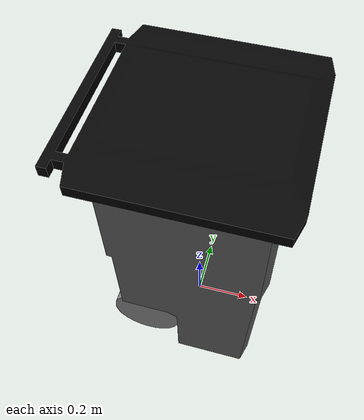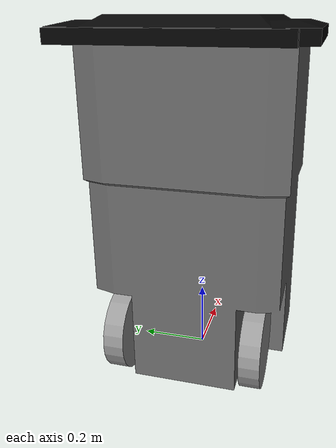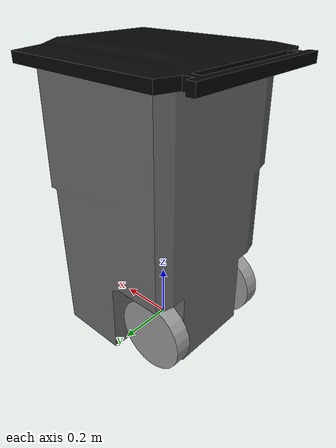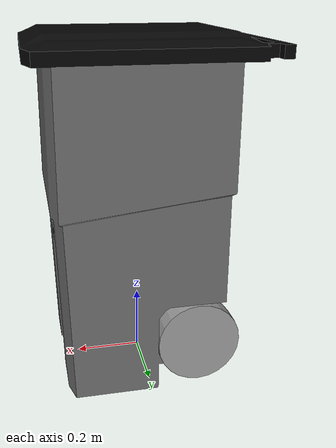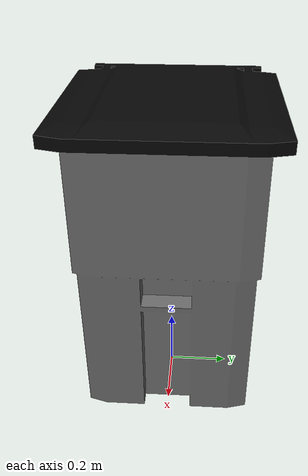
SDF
<?xml version="1.0" ?>
<sdf version="1.5">
  <model name="trash_can_35g">
    <self_collide>false</self_collide>
    <link name="base_link">
      <pose>0 0 0 0 0 0</pose>
      <inertial>
        <pose>0 0 0.4882 0 0 0</pose>
        <mass>55.5</mass>
        <inertia>
          <ixx>5.96</ixx>
          <ixy>0</ixy>
          <ixz>0</ixz>
          <iyy>7.02</iyy>
          <iyz>0</iyz>
          <izz>4.28</izz>
        </inertia>
      </inertial>

      <visual name="base_visual">
        <pose>0.1 0.13 0.13 0 0 0</pose>
        <geometry>
          <mesh>
            <uri>model://trash_can_35g/meshes/trash_can_body.dae</uri>
            <scale>0.28 0.28 0.28</scale>
          </mesh>
        </geometry>
      </visual>

      <collision name="back_base_collision">
        <pose>-0.12 0 0.15 0 0 0</pose>
        <geometry>
          <box>
            <size>0.24 0.3 0.28</size>
          </box>
        </geometry>
      </collision>

      <collision name="front_base_collision">
        <pose>0.12 0 0.15 0 0 0</pose>
        <geometry>
          <box>
            <size>0.24 0.55 0.28</size>
          </box>
        </geometry>
        <surface>
          <friction>
            <ode>
              <mu>1.0</mu>
              <mu2>1.0</mu2>
              <slip1>0.0</slip1>
              <slip2>0.0</slip2>
            </ode>
          </friction>
        </surface>
      </collision>

      <collision name="mid_base_collision">
        <pose>0 0 0.43 0 0 0</pose>
        <geometry>
          <box>
            <size>0.48 0.55 0.28</size>
          </box>
        </geometry>
      </collision>
      <collision name="top_base_collision">
        <pose>0 0 0.778 0 0 0</pose>
        <geometry>
          <box>
            <size>0.48 0.6 0.416</size>
          </box>
        </geometry>
      </collision>
    </link>

    <link name="left_wheel_link">
      <pose>-0.15 0.2 0.127 -1.57 0 0</pose>
      <inertial>
        <mass>2.72</mass>
        <inertia>
          <ixx>0.0118</ixx>
          <ixy>0</ixy>
          <ixz>0</ixz>
          <iyy>0.0118</iyy>
          <iyz>0</iyz>
          <izz>0.0037</izz>
        </inertia>
      </inertial>

      <visual name="left_wheel_visual">
        <geometry>
          <cylinder>
            <radius>0.127</radius>
            <length>0.06</length>
          </cylinder>
        </geometry>
        <material>
          <script>
            <name>Gazebo/Grey</name>
          </script>
        </material>
      </visual>

      <collision name="left_wheel_collision">
        <geometry>
          <cylinder>
            <radius>0.127</radius>
            <length>0.06</length>
          </cylinder>
        </geometry>
        <surface>
          <friction>
            <ode>
              <mu>1.0</mu>
              <mu2>0.0</mu2>
              <slip1>0</slip1>
              <slip2>0</slip2>
            </ode>
          </friction>
          <contact>
            <ode>
              <min_depth>0.005</min_depth>
              <kp>1e8</kp>
            </ode>
          </contact>
        </surface>
      </collision>
    </link>

    <link name="right_wheel_link">
      <pose>-0.15 -0.2 0.127 1.57 0 0</pose>
      <inertial>
        <mass>2.72</mass>
        <inertia>
          <ixx>0.0118</ixx>
          <ixy>0</ixy>
          <ixz>0</ixz>
          <iyy>0.0118</iyy>
          <iyz>0</iyz>
          <izz>0.0037</izz>
        </inertia>
      </inertial>

      <visual name="right_wheel_visual">
        <geometry>
          <cylinder>
            <radius>0.127</radius>
            <length>0.06</length>
          </cylinder>
        </geometry>
        <material>
          <script>
            <name>Gazebo/Grey</name>
          </script>
        </material>
      </visual>

      <collision name="right_wheel_collision">
        <geometry>
          <cylinder>
            <radius>0.127</radius>
            <length>0.06</length>
          </cylinder>
        </geometry>
        <surface>
          <friction>
            <ode>
              <mu>1.0</mu>
              <mu2>0.0</mu2>
              <slip1>0</slip1>
              <slip2>0</slip2>
            </ode>
          </friction>
          <contact>
            <ode>
              <min_depth>0.005</min_depth>
              <kp>1e8</kp>
            </ode>
          </contact>
        </surface>
      </collision>
    </link>
    <joint name="left_wheel_joint" type="revolute">
      <parent>base_link</parent>
      <child>left_wheel_link</child>
      <axis>
        <xyz>0 0 -1</xyz>
        <dynamics>
          <damping>.7</damping>
          <friction>.2</friction>
        </dynamics>
      </axis>
    </joint>
    <joint name="right_wheel_joint" type="revolute">
      <parent>base_link</parent>
      <child>right_wheel_link</child>
      <axis>
        <xyz>0 0 1</xyz>
        <dynamics>
          <damping>.7</damping>
          <friction>.2</friction>
        </dynamics>
      </axis>
    </joint>
  </model>
</sdf>
